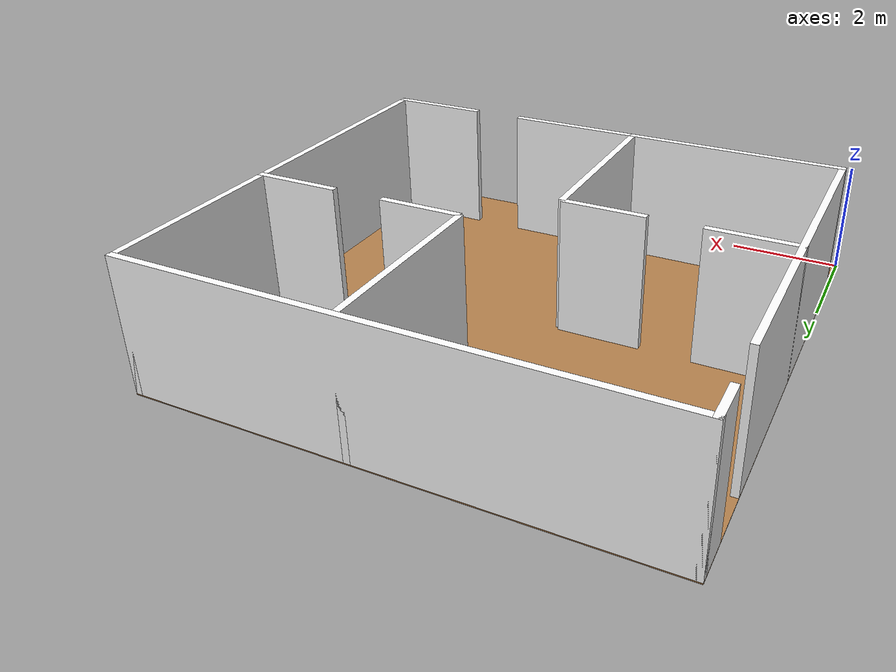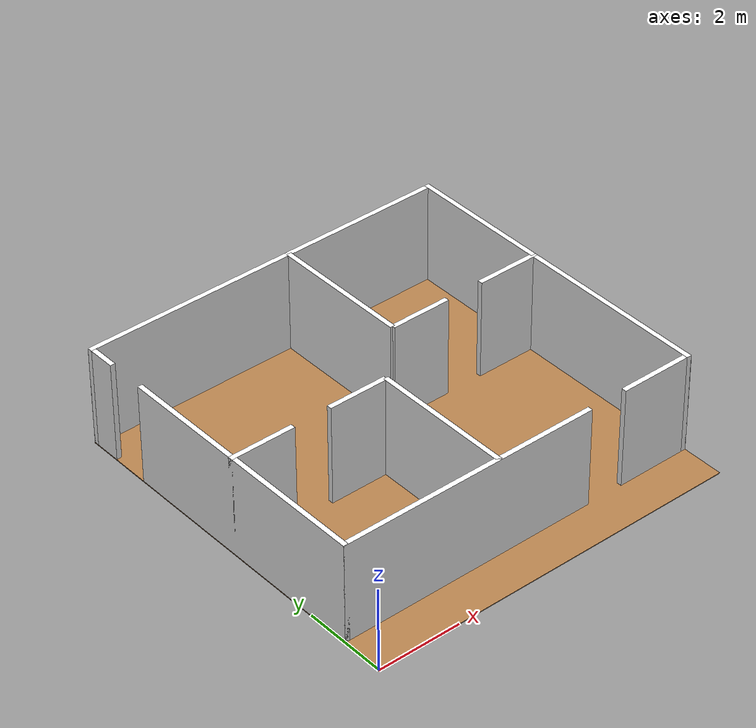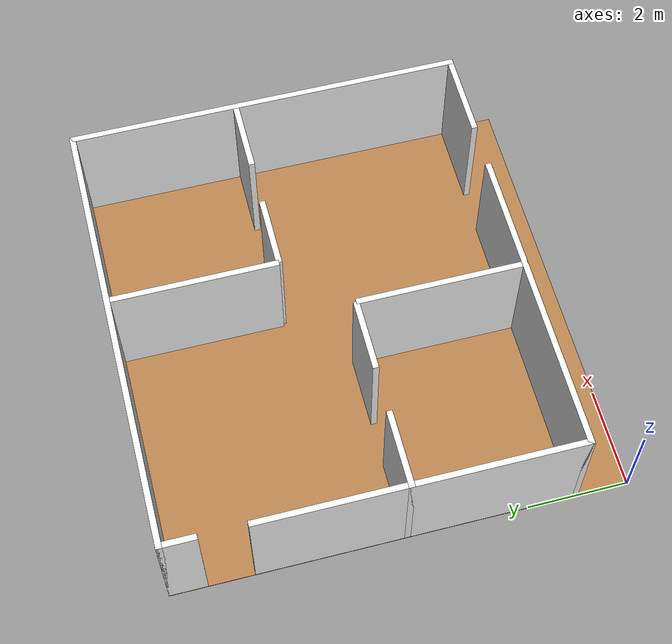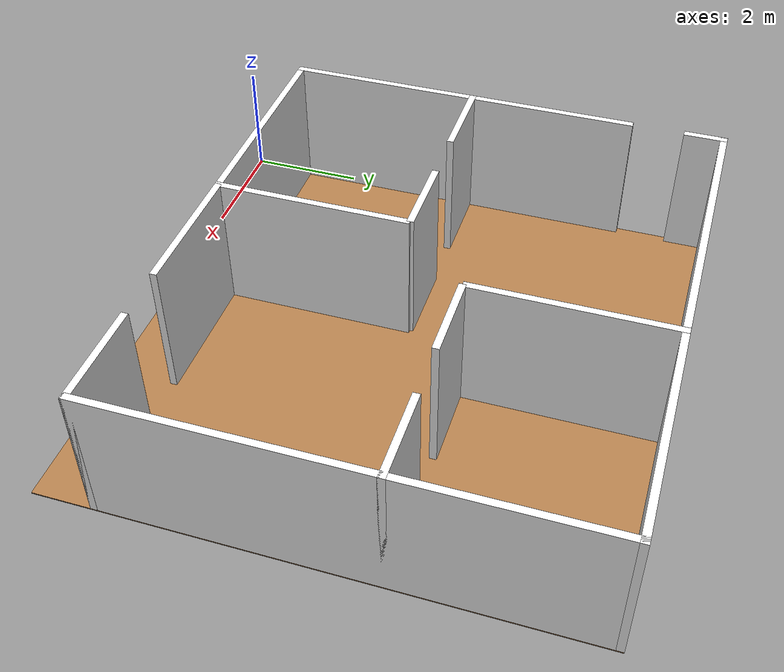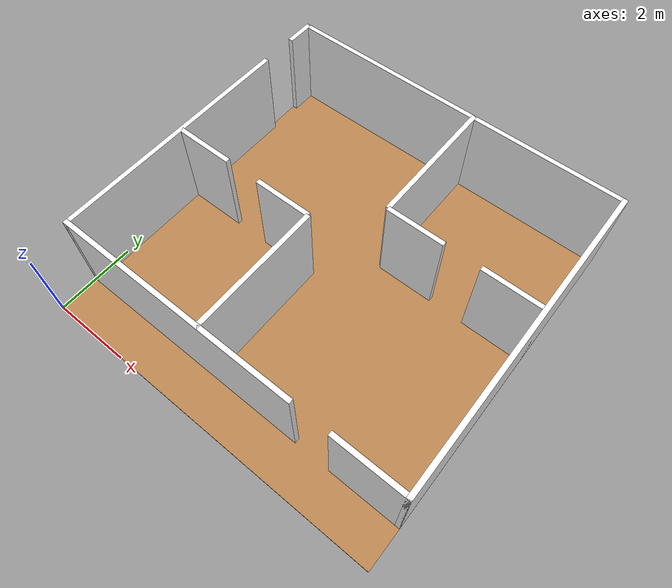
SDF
<sdf version="1.6">
 <world name="default">
  <light name="sun" type="directional">
   <pose>4.5 4.5 10 0 0 0</pose>
   <diffuse>0.85 0.85 0.85 1</diffuse>
   <specular>0.15 0.15 0.15 1</specular>
   <attenuation>
    <range>1000</range>
    <constant>0.9</constant>
    <linear>0.01</linear>
    <quadratic>0.001</quadratic>
   </attenuation>
   <direction>-0.4 0.2 -1</direction>
  </light>
  <light name="ceiling_center" type="point">
   <cast_shadows>false</cast_shadows>
   <pose>4.5 5.0 2.8 0 0 0</pose>
   <diffuse>0.55 0.55 0.50 1</diffuse>
   <specular>0.05 0.05 0.05 1</specular>
   <attenuation>
    <range>12</range>
    <constant>0.6</constant>
    <linear>0.05</linear>
    <quadratic>0.005</quadratic>
   </attenuation>
  </light>
  <gravity>0 0 -9.8</gravity>
  <magnetic_field>6e-06 2.3e-05 -4.2e-05</magnetic_field>
  <atmosphere type="adiabatic"/>
  <physics name="default_physics" default="0" type="ode">
   <max_step_size>0.001</max_step_size>
   <real_time_factor>1</real_time_factor>
   <real_time_update_rate>1000</real_time_update_rate>
  </physics>
  <scene>
   <ambient>0.55 0.55 0.55 1</ambient>
   <background>0.70 0.70 0.72 1</background>
   <shadows>true</shadows>
  </scene>
  <model name="wood_floor">
   <static>true</static>
   <pose>4.5 4.5 -0.01 0 0 0</pose>
   <link name="floor_link">
    <collision name="collision">
     <geometry><box><size>9.0 9.0 0.02</size></box></geometry>
     <surface><friction><ode><mu>100</mu><mu2>50</mu2></ode></friction></surface>
    </collision>
    <visual name="visual">
     <cast_shadows>false</cast_shadows>
     <geometry><box><size>9.0 9.0 0.02</size></box></geometry>
     <material>
      <script><uri>file://media/materials/scripts/gazebo.material</uri><name>Gazebo/WoodFloor</name></script>
     </material>
    </visual>
   </link>
  </model>
  <model name="four_room_house">
   <static>true</static>
   <link name="wall_bottom_left">
    <pose>3.15 1.06 1.2 0 0 0</pose>
    <collision name="collision"><geometry><box><size>6.30 0.12 2.4</size></box></geometry></collision>
    <visual name="visual">
     <geometry><box><size>6.30 0.12 2.4</size></box></geometry>
     <material><ambient>1 1 1 1</ambient><diffuse>1 1 1 1</diffuse><specular>0.15 0.15 0.15 1</specular></material>
    </visual>
   </link>
   <link name="wall_bottom_right">
    <pose>8.10 1.06 1.2 0 0 0</pose>
    <collision name="collision"><geometry><box><size>1.80 0.12 2.4</size></box></geometry></collision>
    <visual name="visual">
     <geometry><box><size>1.80 0.12 2.4</size></box></geometry>
     <material><ambient>1 1 1 1</ambient><diffuse>1 1 1 1</diffuse><specular>0.15 0.15 0.15 1</specular></material>
    </visual>
   </link>
   <link name="wall_top">
    <pose>4.5 8.94 1.2 0 0 0</pose>
    <collision name="collision"><geometry><box><size>9.0 0.12 2.4</size></box></geometry></collision>
    <visual name="visual">
     <geometry><box><size>9.0 0.12 2.4</size></box></geometry>
     <material><ambient>1 1 1 1</ambient><diffuse>1 1 1 1</diffuse><specular>0.15 0.15 0.15 1</specular></material>
    </visual>
   </link>
   <link name="wall_left_lower">
    <pose>0.06 4.175 1.2 0 0 0</pose>
    <collision name="collision"><geometry><box><size>0.12 6.35 2.4</size></box></geometry></collision>
    <visual name="visual">
     <geometry><box><size>0.12 6.35 2.4</size></box></geometry>
     <material><ambient>1 1 1 1</ambient><diffuse>1 1 1 1</diffuse><specular>0.15 0.15 0.15 1</specular></material>
    </visual>
   </link>
   <link name="wall_left_upper">
    <pose>0.06 8.625 1.2 0 0 0</pose>
    <collision name="collision"><geometry><box><size>0.12 0.75 2.4</size></box></geometry></collision>
    <visual name="visual">
     <geometry><box><size>0.12 0.75 2.4</size></box></geometry>
     <material><ambient>1 1 1 1</ambient><diffuse>1 1 1 1</diffuse><specular>0.15 0.15 0.15 1</specular></material>
    </visual>
   </link>
   <link name="wall_right">
    <pose>8.94 5.0 1.2 0 0 0</pose>
    <collision name="collision"><geometry><box><size>0.12 8.0 2.4</size></box></geometry></collision>
    <visual name="visual">
     <geometry><box><size>0.12 8.0 2.4</size></box></geometry>
     <material><ambient>1 1 1 1</ambient><diffuse>1 1 1 1</diffuse><specular>0.15 0.15 0.15 1</specular></material>
    </visual>
   </link>
   <link name="wall_bedroom_right">
    <pose>3.9 2.7 1.2 0 0 0</pose>
    <collision name="collision"><geometry><box><size>0.12 3.4 2.4</size></box></geometry></collision>
    <visual name="visual">
     <geometry><box><size>0.12 3.4 2.4</size></box></geometry>
     <material><ambient>1 1 1 1</ambient><diffuse>1 1 1 1</diffuse><specular>0.15 0.15 0.15 1</specular></material>
    </visual>
   </link>
   <link name="wall_bedroom_top_left">
    <pose>0.775 4.4 1.2 0 0 0</pose>
    <collision name="collision"><geometry><box><size>1.55 0.12 2.4</size></box></geometry></collision>
    <visual name="visual">
     <geometry><box><size>1.55 0.12 2.4</size></box></geometry>
     <material><ambient>1 1 1 1</ambient><diffuse>1 1 1 1</diffuse><specular>0.15 0.15 0.15 1</specular></material>
    </visual>
   </link>
   <link name="wall_bedroom_top_right">
    <pose>3.175 4.4 1.2 0 0 0</pose>
    <collision name="collision"><geometry><box><size>1.45 0.12 2.4</size></box></geometry></collision>
    <visual name="visual">
     <geometry><box><size>1.45 0.12 2.4</size></box></geometry>
     <material><ambient>1 1 1 1</ambient><diffuse>1 1 1 1</diffuse><specular>0.15 0.15 0.15 1</specular></material>
    </visual>
   </link>
   <link name="wall_kitchen_left">
    <pose>5.1 7.3 1.2 0 0 0</pose>
    <collision name="collision"><geometry><box><size>0.12 3.4 2.4</size></box></geometry></collision>
    <visual name="visual">
     <geometry><box><size>0.12 3.4 2.4</size></box></geometry>
     <material><ambient>1 1 1 1</ambient><diffuse>1 1 1 1</diffuse><specular>0.15 0.15 0.15 1</specular></material>
    </visual>
   </link>
   <link name="wall_kitchen_bottom_left">
    <pose>5.825 5.6 1.2 0 0 0</pose>
    <collision name="collision"><geometry><box><size>1.45 0.12 2.4</size></box></geometry></collision>
    <visual name="visual">
     <geometry><box><size>1.45 0.12 2.4</size></box></geometry>
     <material><ambient>1 1 1 1</ambient><diffuse>1 1 1 1</diffuse><specular>0.15 0.15 0.15 1</specular></material>
    </visual>
   </link>
   <link name="wall_kitchen_bottom_right">
    <pose>8.225 5.6 1.2 0 0 0</pose>
    <collision name="collision"><geometry><box><size>1.55 0.12 2.4</size></box></geometry></collision>
    <visual name="visual">
     <geometry><box><size>1.55 0.12 2.4</size></box></geometry>
     <material><ambient>1 1 1 1</ambient><diffuse>1 1 1 1</diffuse><specular>0.15 0.15 0.15 1</specular></material>
    </visual>
   </link>
  </model>
 </world>
</sdf>
